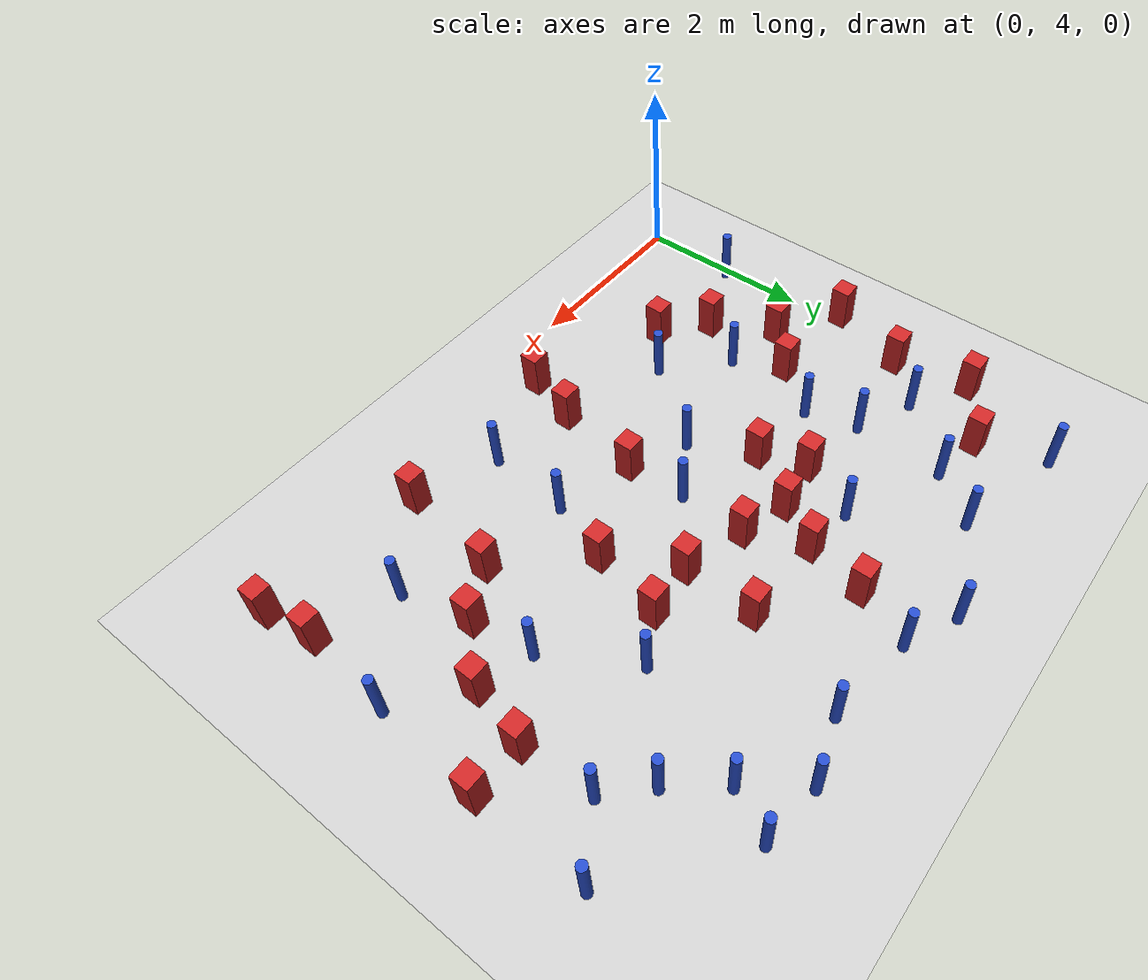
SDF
<sdf version="1.6">
 <world name="default">
  <model name="ground_plane">
   <static>1</static>
   <link name="link">
    <collision name="collision">
     <geometry><plane><normal>0 0 1</normal><size>100 100</size></plane></geometry>
     <surface><friction><ode><mu>100</mu><mu2>50</mu2></ode></friction></surface>
    </collision>
    <visual name="visual">
     <cast_shadows>0</cast_shadows>
     <geometry><plane><normal>0 0 1</normal><size>100 100</size></plane></geometry>
     <material>
      <ambient>1.0 1.0 1.0 1.0</ambient>
      <diffuse>0.8 0.8 0.8 1.0</diffuse>
      <specular>0.01 0.01 0.01 1.000000</specular>
     </material>
    </visual>
   </link>
  </model>
  <model name="square_post_obstacle3">
   <static>true</static>
   <pose>0.220283548735 7.4439996634 8.22691968438e-08 7.2212513382e-06 -7.54495500217e-07 2.29674213826e-05</pose>
   <link name="link">
    <pose>0 0 0.25 0 -0 0</pose>
    <inertial>
     <mass>100</mass>
     <inertia>
      <ixx>0.166667</ixx>
      <ixy>0</ixy>
      <ixz>0</ixz>
      <iyy>0.166667</iyy>
      <iyz>0</iyz>
      <izz>0.166667</izz>
     </inertia>
    </inertial>
    <collision name="collision"><geometry><box><size>.2 .2 .5</size></box></geometry></collision>
    <visual name="visual">
     <geometry><box><size>.2 .2 .5</size></box></geometry>
     <material>
      <script><name>Gazebo/Red</name><uri>file://media/materials/scripts/gazebo.material</uri></script>
     </material>
    </visual>
   </link>
  </model>
  <model name="pole_obstacle6">
   <static>true</static>
   <pose>2.69425308004 9.47498781607 2.88873142074e-08 -9.90536692318e-09 4.6021994893e-07 -1.20965994988e-07</pose>
   <link name="link">
    <pose>0 0 0.3 0 -0 0</pose>
    <inertial>
     <mass>1</mass>
     <inertia><ixx>0.145833</ixx><ixy>0</ixy><ixz>0</ixz><iyy>0.145833</iyy><iyz>0</iyz><izz>0.125</izz></inertia>
    </inertial>
    <collision name="collision">
     <geometry><cylinder><radius>0.05</radius><length>.6</length></cylinder></geometry>
    </collision>
    <visual name="visual">
     <geometry><cylinder><radius>0.05</radius><length>.6</length></cylinder></geometry>
     <material>
      <script><name>Gazebo/Blue</name><uri>file://media/materials/scripts/gazebo.material</uri></script>
     </material>
    </visual>
   </link>
  </model>
  <model name="square_post_obstacle9">
   <static>true</static>
   <pose>3.78639637061 7.98627830931 8.22691968438e-08 7.22125133819e-06 -7.54495500217e-07 2.29674213826e-05</pose>
   <link name="link">
    <pose>0 0 0.25 0 -0 0</pose>
    <inertial>
     <mass>100</mass>
     <inertia>
      <ixx>0.166667</ixx>
      <ixy>0</ixy>
      <ixz>0</ixz>
      <iyy>0.166667</iyy>
      <iyz>0</iyz>
      <izz>0.166667</izz>
     </inertia>
    </inertial>
    <collision name="collision"><geometry><box><size>.2 .2 .5</size></box></geometry></collision>
    <visual name="visual">
     <geometry><box><size>.2 .2 .5</size></box></geometry>
     <material>
      <script><name>Gazebo/Red</name><uri>file://media/materials/scripts/gazebo.material</uri></script>
     </material>
    </visual>
   </link>
  </model>
  <model name="pole_obstacle8">
   <static>true</static>
   <pose>2.31026452429 8.07180939021 2.88873142074e-08 -9.90536692318e-09 4.6021994893e-07 -1.20965994988e-07</pose>
   <link name="link">
    <pose>0 0 0.3 0 -0 0</pose>
    <inertial>
     <mass>1</mass>
     <inertia><ixx>0.145833</ixx><ixy>0</ixy><ixz>0</ixz><iyy>0.145833</iyy><iyz>0</iyz><izz>0.125</izz></inertia>
    </inertial>
    <collision name="collision">
     <geometry><cylinder><radius>0.05</radius><length>.6</length></cylinder></geometry>
    </collision>
    <visual name="visual">
     <geometry><cylinder><radius>0.05</radius><length>.6</length></cylinder></geometry>
     <material>
      <script><name>Gazebo/Blue</name><uri>file://media/materials/scripts/gazebo.material</uri></script>
     </material>
    </visual>
   </link>
  </model>
  <model name="pole_obstacle9">
   <static>true</static>
   <pose>2.51598019912 6.29896532646 2.88873142074e-08 -9.90536689859e-09 4.60219948989e-07 -1.20965994961e-07</pose>
   <link name="link">
    <pose>0 0 0.3 0 -0 0</pose>
    <inertial>
     <mass>1</mass>
     <inertia><ixx>0.145833</ixx><ixy>0</ixy><ixz>0</ixz><iyy>0.145833</iyy><iyz>0</iyz><izz>0.125</izz></inertia>
    </inertial>
    <collision name="collision">
     <geometry><cylinder><radius>0.05</radius><length>.6</length></cylinder></geometry>
    </collision>
    <visual name="visual">
     <geometry><cylinder><radius>0.05</radius><length>.6</length></cylinder></geometry>
     <material>
      <script><name>Gazebo/Blue</name><uri>file://media/materials/scripts/gazebo.material</uri></script>
     </material>
    </visual>
   </link>
  </model>
  <model name="square_post_obstacle17">
   <static>true</static>
   <pose>4.68955021579 4.60673280405 8.22691968438e-08 7.2212513382e-06 -7.54495500217e-07 2.29674213826e-05</pose>
   <link name="link">
    <pose>0 0 0.25 0 -0 0</pose>
    <inertial>
     <mass>100</mass>
     <inertia>
      <ixx>0.166667</ixx>
      <ixy>0</ixy>
      <ixz>0</ixz>
      <iyy>0.166667</iyy>
      <iyz>0</iyz>
      <izz>0.166667</izz>
     </inertia>
    </inertial>
    <collision name="collision"><geometry><box><size>.2 .2 .5</size></box></geometry></collision>
    <visual name="visual">
     <geometry><box><size>.2 .2 .5</size></box></geometry>
     <material>
      <script><name>Gazebo/Red</name><uri>file://media/materials/scripts/gazebo.material</uri></script>
     </material>
    </visual>
   </link>
  </model>
  <model name="square_post_obstacle23">
   <static>true</static>
   <pose>4.85911699696 5.70394162171 8.22691968438e-08 7.2212513382e-06 -7.54495500217e-07 2.29674213826e-05</pose>
   <link name="link">
    <pose>0 0 0.25 0 -0 0</pose>
    <inertial>
     <mass>100</mass>
     <inertia>
      <ixx>0.166667</ixx>
      <ixy>0</ixy>
      <ixz>0</ixz>
      <iyy>0.166667</iyy>
      <iyz>0</iyz>
      <izz>0.166667</izz>
     </inertia>
    </inertial>
    <collision name="collision"><geometry><box><size>.2 .2 .5</size></box></geometry></collision>
    <visual name="visual">
     <geometry><box><size>.2 .2 .5</size></box></geometry>
     <material>
      <script><name>Gazebo/Red</name><uri>file://media/materials/scripts/gazebo.material</uri></script>
     </material>
    </visual>
   </link>
  </model>
  <model name="square_post_obstacle30">
   <static>true</static>
   <pose>2.8649841445 8.0075565689 8.22691968438e-08 7.22125133819e-06 -7.54495500217e-07 2.29674213826e-05</pose>
   <link name="link">
    <pose>0 0 0.25 0 -0 0</pose>
    <inertial>
     <mass>100</mass>
     <inertia>
      <ixx>0.166667</ixx>
      <ixy>0</ixy>
      <ixz>0</ixz>
      <iyy>0.166667</iyy>
      <iyz>0</iyz>
      <izz>0.166667</izz>
     </inertia>
    </inertial>
    <collision name="collision"><geometry><box><size>.2 .2 .5</size></box></geometry></collision>
    <visual name="visual">
     <geometry><box><size>.2 .2 .5</size></box></geometry>
     <material>
      <script><name>Gazebo/Red</name><uri>file://media/materials/scripts/gazebo.material</uri></script>
     </material>
    </visual>
   </link>
  </model>
  <model name="square_post_obstacle34">
   <static>true</static>
   <pose>0.085140028514 8.27013821158 8.22691968438e-08 7.22125133819e-06 -7.54495500217e-07 2.29674213826e-05</pose>
   <link name="link">
    <pose>0 0 0.25 0 -0 0</pose>
    <inertial>
     <mass>100</mass>
     <inertia>
      <ixx>0.166667</ixx>
      <ixy>0</ixy>
      <ixz>0</ixz>
      <iyy>0.166667</iyy>
      <iyz>0</iyz>
      <izz>0.166667</izz>
     </inertia>
    </inertial>
    <collision name="collision"><geometry><box><size>.2 .2 .5</size></box></geometry></collision>
    <visual name="visual">
     <geometry><box><size>.2 .2 .5</size></box></geometry>
     <material>
      <script><name>Gazebo/Red</name><uri>file://media/materials/scripts/gazebo.material</uri></script>
     </material>
    </visual>
   </link>
  </model>
  <model name="pole_obstacle37">
   <static>true</static>
   <pose>5.17884029192 8.73370272493 2.88873142074e-08 -9.9053668967e-09 4.60219948993e-07 -1.20965994957e-07</pose>
   <link name="link">
    <pose>0 0 0.3 0 -0 0</pose>
    <inertial>
     <mass>1</mass>
     <inertia><ixx>0.145833</ixx><ixy>0</ixy><ixz>0</ixz><iyy>0.145833</iyy><iyz>0</iyz><izz>0.125</izz></inertia>
    </inertial>
    <collision name="collision">
     <geometry><cylinder><radius>0.05</radius><length>.6</length></cylinder></geometry>
    </collision>
    <visual name="visual">
     <geometry><cylinder><radius>0.05</radius><length>.6</length></cylinder></geometry>
     <material>
      <script><name>Gazebo/Blue</name><uri>file://media/materials/scripts/gazebo.material</uri></script>
     </material>
    </visual>
   </link>
  </model>
  <model name="pole_obstacle38">
   <static>true</static>
   <pose>5.52403362217 5.26702677876 2.88873142074e-08 -9.90536690842e-09 4.60219948965e-07 -1.20965994976e-07</pose>
   <link name="link">
    <pose>0 0 0.3 0 -0 0</pose>
    <inertial>
     <mass>1</mass>
     <inertia><ixx>0.145833</ixx><ixy>0</ixy><ixz>0</ixz><iyy>0.145833</iyy><iyz>0</iyz><izz>0.125</izz></inertia>
    </inertial>
    <collision name="collision">
     <geometry><cylinder><radius>0.05</radius><length>.6</length></cylinder></geometry>
    </collision>
    <visual name="visual">
     <geometry><cylinder><radius>0.05</radius><length>.6</length></cylinder></geometry>
     <material>
      <script><name>Gazebo/Blue</name><uri>file://media/materials/scripts/gazebo.material</uri></script>
     </material>
    </visual>
   </link>
  </model>
  <model name="pole_obstacle45">
   <static>true</static>
   <pose>6.49874152332 8.29672848113 2.88873142074e-08 -9.9053668967e-09 4.60219948993e-07 -1.20965994957e-07</pose>
   <link name="link">
    <pose>0 0 0.3 0 -0 0</pose>
    <inertial>
     <mass>1</mass>
     <inertia><ixx>0.145833</ixx><ixy>0</ixy><ixz>0</ixz><iyy>0.145833</iyy><iyz>0</iyz><izz>0.125</izz></inertia>
    </inertial>
    <collision name="collision">
     <geometry><cylinder><radius>0.05</radius><length>.6</length></cylinder></geometry>
    </collision>
    <visual name="visual">
     <geometry><cylinder><radius>0.05</radius><length>.6</length></cylinder></geometry>
     <material>
      <script><name>Gazebo/Blue</name><uri>file://media/materials/scripts/gazebo.material</uri></script>
     </material>
    </visual>
   </link>
  </model>
  <model name="square_post_obstacle43">
   <static>true</static>
   <pose>4.30811936155 7.25453280102 8.22691968438e-08 7.2212513382e-06 -7.54495500217e-07 2.29674213826e-05</pose>
   <link name="link">
    <pose>0 0 0.25 0 -0 0</pose>
    <inertial>
     <mass>100</mass>
     <inertia>
      <ixx>0.166667</ixx>
      <ixy>0</ixy>
      <ixz>0</ixz>
      <iyy>0.166667</iyy>
      <iyz>0</iyz>
      <izz>0.166667</izz>
     </inertia>
    </inertial>
    <collision name="collision"><geometry><box><size>.2 .2 .5</size></box></geometry></collision>
    <visual name="visual">
     <geometry><box><size>.2 .2 .5</size></box></geometry>
     <material>
      <script><name>Gazebo/Red</name><uri>file://media/materials/scripts/gazebo.material</uri></script>
     </material>
    </visual>
   </link>
  </model>
  <model name="square_post_obstacle46">
   <static>true</static>
   <pose>5.35161566547 6.00532809683 8.22691968438e-08 7.2212513382e-06 -7.54495500217e-07 2.29674213826e-05</pose>
   <link name="link">
    <pose>0 0 0.25 0 -0 0</pose>
    <inertial>
     <mass>100</mass>
     <inertia>
      <ixx>0.166667</ixx>
      <ixy>0</ixy>
      <ixz>0</ixz>
      <iyy>0.166667</iyy>
      <iyz>0</iyz>
      <izz>0.166667</izz>
     </inertia>
    </inertial>
    <collision name="collision"><geometry><box><size>.2 .2 .5</size></box></geometry></collision>
    <visual name="visual">
     <geometry><box><size>.2 .2 .5</size></box></geometry>
     <material>
      <script><name>Gazebo/Red</name><uri>file://media/materials/scripts/gazebo.material</uri></script>
     </material>
    </visual>
   </link>
  </model>
  <model name="square_post_obstacle56">
   <static>true</static>
   <pose>0.604942297487 6.14686317366 8.22691968438e-08 7.2212513382e-06 -7.54495500217e-07 2.29674213826e-05</pose>
   <link name="link">
    <pose>0 0 0.25 0 -0 0</pose>
    <inertial>
     <mass>100</mass>
     <inertia>
      <ixx>0.166667</ixx>
      <ixy>0</ixy>
      <ixz>0</ixz>
      <iyy>0.166667</iyy>
      <iyz>0</iyz>
      <izz>0.166667</izz>
     </inertia>
    </inertial>
    <collision name="collision"><geometry><box><size>.2 .2 .5</size></box></geometry></collision>
    <visual name="visual">
     <geometry><box><size>.2 .2 .5</size></box></geometry>
     <material>
      <script><name>Gazebo/Red</name><uri>file://media/materials/scripts/gazebo.material</uri></script>
     </material>
    </visual>
   </link>
  </model>
  <model name="pole_obstacle53">
   <static>true</static>
   <pose>1.41320910387 7.03938046539 2.88873142074e-08 -9.90536689852e-09 4.60219948989e-07 -1.2096599496e-07</pose>
   <link name="link">
    <pose>0 0 0.3 0 -0 0</pose>
    <inertial>
     <mass>1</mass>
     <inertia><ixx>0.145833</ixx><ixy>0</ixy><ixz>0</ixz><iyy>0.145833</iyy><iyz>0</iyz><izz>0.125</izz></inertia>
    </inertial>
    <collision name="collision">
     <geometry><cylinder><radius>0.05</radius><length>.6</length></cylinder></geometry>
    </collision>
    <visual name="visual">
     <geometry><cylinder><radius>0.05</radius><length>.6</length></cylinder></geometry>
     <material>
      <script><name>Gazebo/Blue</name><uri>file://media/materials/scripts/gazebo.material</uri></script>
     </material>
    </visual>
   </link>
  </model>
  <model name="square_post_obstacle57">
   <static>true</static>
   <pose>2.05604624781 7.47773621085 8.22691968438e-08 7.22125133819e-06 -7.54495500217e-07 2.29674213826e-05</pose>
   <link name="link">
    <pose>0 0 0.25 0 -0 0</pose>
    <inertial>
     <mass>100</mass>
     <inertia>
      <ixx>0.166667</ixx>
      <ixy>0</ixy>
      <ixz>0</ixz>
      <iyy>0.166667</iyy>
      <iyz>0</iyz>
      <izz>0.166667</izz>
     </inertia>
    </inertial>
    <collision name="collision"><geometry><box><size>.2 .2 .5</size></box></geometry></collision>
    <visual name="visual">
     <geometry><box><size>.2 .2 .5</size></box></geometry>
     <material>
      <script><name>Gazebo/Red</name><uri>file://media/materials/scripts/gazebo.material</uri></script>
     </material>
    </visual>
   </link>
  </model>
  <model name="pole_obstacle55">
   <static>true</static>
   <pose>3.07885380343 6.66788064376 2.88873142074e-08 -9.90536689859e-09 4.60219948989e-07 -1.20965994961e-07</pose>
   <link name="link">
    <pose>0 0 0.3 0 -0 0</pose>
    <inertial>
     <mass>1</mass>
     <inertia><ixx>0.145833</ixx><ixy>0</ixy><ixz>0</ixz><iyy>0.145833</iyy><iyz>0</iyz><izz>0.125</izz></inertia>
    </inertial>
    <collision name="collision">
     <geometry><cylinder><radius>0.05</radius><length>.6</length></cylinder></geometry>
    </collision>
    <visual name="visual">
     <geometry><cylinder><radius>0.05</radius><length>.6</length></cylinder></geometry>
     <material>
      <script><name>Gazebo/Blue</name><uri>file://media/materials/scripts/gazebo.material</uri></script>
     </material>
    </visual>
   </link>
  </model>
  <model name="square_post_obstacle69">
   <static>true</static>
   <pose>5.95506873294 7.13455975643 8.22691968438e-08 7.2212513382e-06 -7.54495500217e-07 2.29674213826e-05</pose>
   <link name="link">
    <pose>0 0 0.25 0 -0 0</pose>
    <inertial>
     <mass>100</mass>
     <inertia>
      <ixx>0.166667</ixx>
      <ixy>0</ixy>
      <ixz>0</ixz>
      <iyy>0.166667</iyy>
      <iyz>0</iyz>
      <izz>0.166667</izz>
     </inertia>
    </inertial>
    <collision name="collision"><geometry><box><size>.2 .2 .5</size></box></geometry></collision>
    <visual name="visual">
     <geometry><box><size>.2 .2 .5</size></box></geometry>
     <material>
      <script><name>Gazebo/Red</name><uri>file://media/materials/scripts/gazebo.material</uri></script>
     </material>
    </visual>
   </link>
  </model>
  <model name="pole_obstacle67">
   <static>true</static>
   <pose>0.0829915816881 5.0885147181 2.88873142074e-08 -9.90536689742e-09 4.60219948992e-07 -1.2096599496e-07</pose>
   <link name="link">
    <pose>0 0 0.3 0 -0 0</pose>
    <inertial>
     <mass>1</mass>
     <inertia><ixx>0.145833</ixx><ixy>0</ixy><ixz>0</ixz><iyy>0.145833</iyy><iyz>0</iyz><izz>0.125</izz></inertia>
    </inertial>
    <collision name="collision">
     <geometry><cylinder><radius>0.05</radius><length>.6</length></cylinder></geometry>
    </collision>
    <visual name="visual">
     <geometry><cylinder><radius>0.05</radius><length>.6</length></cylinder></geometry>
     <material>
      <script><name>Gazebo/Blue</name><uri>file://media/materials/scripts/gazebo.material</uri></script>
     </material>
    </visual>
   </link>
  </model>
  <model name="pole_obstacle69">
   <static>true</static>
   <pose>3.2331415702 9.21373848735 2.88873142074e-08 -9.90536692318e-09 4.6021994893e-07 -1.20965994988e-07</pose>
   <link name="link">
    <pose>0 0 0.3 0 -0 0</pose>
    <inertial>
     <mass>1</mass>
     <inertia><ixx>0.145833</ixx><ixy>0</ixy><ixz>0</ixz><iyy>0.145833</iyy><iyz>0</iyz><izz>0.125</izz></inertia>
    </inertial>
    <collision name="collision">
     <geometry><cylinder><radius>0.05</radius><length>.6</length></cylinder></geometry>
    </collision>
    <visual name="visual">
     <geometry><cylinder><radius>0.05</radius><length>.6</length></cylinder></geometry>
     <material>
      <script><name>Gazebo/Blue</name><uri>file://media/materials/scripts/gazebo.material</uri></script>
     </material>
    </visual>
   </link>
  </model>
  <model name="pole_obstacle73">
   <static>true</static>
   <pose>5.91485376452 7.88671532323 2.88873142074e-08 -9.90536690842e-09 4.60219948965e-07 -1.20965994976e-07</pose>
   <link name="link">
    <pose>0 0 0.3 0 -0 0</pose>
    <inertial>
     <mass>1</mass>
     <inertia><ixx>0.145833</ixx><ixy>0</ixy><ixz>0</ixz><iyy>0.145833</iyy><iyz>0</iyz><izz>0.125</izz></inertia>
    </inertial>
    <collision name="collision">
     <geometry><cylinder><radius>0.05</radius><length>.6</length></cylinder></geometry>
    </collision>
    <visual name="visual">
     <geometry><cylinder><radius>0.05</radius><length>.6</length></cylinder></geometry>
     <material>
      <script><name>Gazebo/Blue</name><uri>file://media/materials/scripts/gazebo.material</uri></script>
     </material>
    </visual>
   </link>
  </model>
  <model name="pole_obstacle95">
   <static>true</static>
   <pose>0.659709493371 7.88145670007 2.88873142074e-08 -9.90536689661e-09 4.60219948993e-07 -1.20965994957e-07</pose>
   <link name="link">
    <pose>0 0 0.3 0 -0 0</pose>
    <inertial>
     <mass>1</mass>
     <inertia><ixx>0.145833</ixx><ixy>0</ixy><ixz>0</ixz><iyy>0.145833</iyy><iyz>0</iyz><izz>0.125</izz></inertia>
    </inertial>
    <collision name="collision">
     <geometry><cylinder><radius>0.05</radius><length>.6</length></cylinder></geometry>
    </collision>
    <visual name="visual">
     <geometry><cylinder><radius>0.05</radius><length>.6</length></cylinder></geometry>
     <material>
      <script><name>Gazebo/Blue</name><uri>file://media/materials/scripts/gazebo.material</uri></script>
     </material>
    </visual>
   </link>
  </model>
  <model name="square_post_obstacle86">
   <static>true</static>
   <pose>3.11945518368 6.03093490074 8.22691968438e-08 7.2212513382e-06 -7.54495500217e-07 2.29674213826e-05</pose>
   <link name="link">
    <pose>0 0 0.25 0 -0 0</pose>
    <inertial>
     <mass>100</mass>
     <inertia>
      <ixx>0.166667</ixx>
      <ixy>0</ixy>
      <ixz>0</ixz>
      <iyy>0.166667</iyy>
      <iyz>0</iyz>
      <izz>0.166667</izz>
     </inertia>
    </inertial>
    <collision name="collision"><geometry><box><size>.2 .2 .5</size></box></geometry></collision>
    <visual name="visual">
     <geometry><box><size>.2 .2 .5</size></box></geometry>
     <material>
      <script><name>Gazebo/Red</name><uri>file://media/materials/scripts/gazebo.material</uri></script>
     </material>
    </visual>
   </link>
  </model>
  <model name="pole_obstacle97">
   <static>true</static>
   <pose>1.31189081528 8.56895167638 2.88873142074e-08 -9.90536690474e-09 4.60219948974e-07 -1.2096599497e-07</pose>
   <link name="link">
    <pose>0 0 0.3 0 -0 0</pose>
    <inertial>
     <mass>1</mass>
     <inertia><ixx>0.145833</ixx><ixy>0</ixy><ixz>0</ixz><iyy>0.145833</iyy><iyz>0</iyz><izz>0.125</izz></inertia>
    </inertial>
    <collision name="collision">
     <geometry><cylinder><radius>0.05</radius><length>.6</length></cylinder></geometry>
    </collision>
    <visual name="visual">
     <geometry><cylinder><radius>0.05</radius><length>.6</length></cylinder></geometry>
     <material>
      <script><name>Gazebo/Blue</name><uri>file://media/materials/scripts/gazebo.material</uri></script>
     </material>
    </visual>
   </link>
  </model>
  <model name="square_post_obstacle89">
   <static>true</static>
   <pose>6.39162029417 4.45620203469 8.22691968438e-08 7.2212513382e-06 -7.54495500217e-07 2.29674213826e-05</pose>
   <link name="link">
    <pose>0 0 0.25 0 -0 0</pose>
    <inertial>
     <mass>100</mass>
     <inertia>
      <ixx>0.166667</ixx>
      <ixy>0</ixy>
      <ixz>0</ixz>
      <iyy>0.166667</iyy>
      <iyz>0</iyz>
      <izz>0.166667</izz>
     </inertia>
    </inertial>
    <collision name="collision"><geometry><box><size>.2 .2 .5</size></box></geometry></collision>
    <visual name="visual">
     <geometry><box><size>.2 .2 .5</size></box></geometry>
     <material>
      <script><name>Gazebo/Red</name><uri>file://media/materials/scripts/gazebo.material</uri></script>
     </material>
    </visual>
   </link>
  </model>
  <model name="square_post_obstacle95">
   <static>true</static>
   <pose>-0.0642270721826 6.59413401046 8.22691968438e-08 7.2212513382e-06 -7.54495500217e-07 2.29674213826e-05</pose>
   <link name="link">
    <pose>0 0 0.25 0 -0 0</pose>
    <inertial>
     <mass>100</mass>
     <inertia>
      <ixx>0.166667</ixx>
      <ixy>0</ixy>
      <ixz>0</ixz>
      <iyy>0.166667</iyy>
      <iyz>0</iyz>
      <izz>0.166667</izz>
     </inertia>
    </inertial>
    <collision name="collision"><geometry><box><size>.2 .2 .5</size></box></geometry></collision>
    <visual name="visual">
     <geometry><box><size>.2 .2 .5</size></box></geometry>
     <material>
      <script><name>Gazebo/Red</name><uri>file://media/materials/scripts/gazebo.material</uri></script>
     </material>
    </visual>
   </link>
  </model>
  <model name="square_post_obstacle96">
   <static>true</static>
   <pose>2.60215764779 7.55907821599 8.22691968438e-08 7.2212513382e-06 -7.54495500217e-07 2.29674213826e-05</pose>
   <link name="link">
    <pose>0 0 0.25 0 -0 0</pose>
    <inertial>
     <mass>100</mass>
     <inertia>
      <ixx>0.166667</ixx>
      <ixy>0</ixy>
      <ixz>0</ixz>
      <iyy>0.166667</iyy>
      <iyz>0</iyz>
      <izz>0.166667</izz>
     </inertia>
    </inertial>
    <collision name="collision"><geometry><box><size>.2 .2 .5</size></box></geometry></collision>
    <visual name="visual">
     <geometry><box><size>.2 .2 .5</size></box></geometry>
     <material>
      <script><name>Gazebo/Red</name><uri>file://media/materials/scripts/gazebo.material</uri></script>
     </material>
    </visual>
   </link>
  </model>
  <model name="pole_obstacle109">
   <static>true</static>
   <pose>5.25581321329 6.64644915877 2.88873142074e-08 -9.90536690842e-09 4.60219948965e-07 -1.20965994976e-07</pose>
   <link name="link">
    <pose>0 0 0.3 0 -0 0</pose>
    <inertial>
     <mass>1</mass>
     <inertia><ixx>0.145833</ixx><ixy>0</ixy><ixz>0</ixz><iyy>0.145833</iyy><iyz>0</iyz><izz>0.125</izz></inertia>
    </inertial>
    <collision name="collision">
     <geometry><cylinder><radius>0.05</radius><length>.6</length></cylinder></geometry>
    </collision>
    <visual name="visual">
     <geometry><cylinder><radius>0.05</radius><length>.6</length></cylinder></geometry>
     <material>
      <script><name>Gazebo/Blue</name><uri>file://media/materials/scripts/gazebo.material</uri></script>
     </material>
    </visual>
   </link>
  </model>
  <model name="square_post_obstacle109">
   <static>true</static>
   <pose>3.76240516653 7.21054712515 8.22691968438e-08 7.2212513382e-06 -7.54495500217e-07 2.29674213826e-05</pose>
   <link name="link">
    <pose>0 0 0.25 0 -0 0</pose>
    <inertial>
     <mass>100</mass>
     <inertia>
      <ixx>0.166667</ixx>
      <ixy>0</ixy>
      <ixz>0</ixz>
      <iyy>0.166667</iyy>
      <iyz>0</iyz>
      <izz>0.166667</izz>
     </inertia>
    </inertial>
    <collision name="collision"><geometry><box><size>.2 .2 .5</size></box></geometry></collision>
    <visual name="visual">
     <geometry><box><size>.2 .2 .5</size></box></geometry>
     <material>
      <script><name>Gazebo/Red</name><uri>file://media/materials/scripts/gazebo.material</uri></script>
     </material>
    </visual>
   </link>
  </model>
  <model name="pole_obstacle128">
   <static>true</static>
   <pose>5.4030353684 9.19148409726 2.88873142074e-08 -9.9053668967e-09 4.60219948993e-07 -1.20965994957e-07</pose>
   <link name="link">
    <pose>0 0 0.3 0 -0 0</pose>
    <inertial>
     <mass>1</mass>
     <inertia><ixx>0.145833</ixx><ixy>0</ixy><ixz>0</ixz><iyy>0.145833</iyy><iyz>0</iyz><izz>0.125</izz></inertia>
    </inertial>
    <collision name="collision">
     <geometry><cylinder><radius>0.05</radius><length>.6</length></cylinder></geometry>
    </collision>
    <visual name="visual">
     <geometry><cylinder><radius>0.05</radius><length>.6</length></cylinder></geometry>
     <material>
      <script><name>Gazebo/Blue</name><uri>file://media/materials/scripts/gazebo.material</uri></script>
     </material>
    </visual>
   </link>
  </model>
  <model name="square_post_obstacle114">
   <static>true</static>
   <pose>2.79283630948 4.50158150014 8.22691968438e-08 7.2212513382e-06 -7.54495500217e-07 2.29674213826e-05</pose>
   <link name="link">
    <pose>0 0 0.25 0 -0 0</pose>
    <inertial>
     <mass>100</mass>
     <inertia>
      <ixx>0.166667</ixx>
      <ixy>0</ixy>
      <ixz>0</ixz>
      <iyy>0.166667</iyy>
      <iyz>0</iyz>
      <izz>0.166667</izz>
     </inertia>
    </inertial>
    <collision name="collision"><geometry><box><size>.2 .2 .5</size></box></geometry></collision>
    <visual name="visual">
     <geometry><box><size>.2 .2 .5</size></box></geometry>
     <material>
      <script><name>Gazebo/Red</name><uri>file://media/materials/scripts/gazebo.material</uri></script>
     </material>
    </visual>
   </link>
  </model>
  <model name="pole_obstacle136">
   <static>true</static>
   <pose>1.84269373913 5.42435164574 2.88873142074e-08 -9.90536689852e-09 4.60219948989e-07 -1.2096599496e-07</pose>
   <link name="link">
    <pose>0 0 0.3 0 -0 0</pose>
    <inertial>
     <mass>1</mass>
     <inertia><ixx>0.145833</ixx><ixy>0</ixy><ixz>0</ixz><iyy>0.145833</iyy><iyz>0</iyz><izz>0.125</izz></inertia>
    </inertial>
    <collision name="collision">
     <geometry><cylinder><radius>0.05</radius><length>.6</length></cylinder></geometry>
    </collision>
    <visual name="visual">
     <geometry><cylinder><radius>0.05</radius><length>.6</length></cylinder></geometry>
     <material>
      <script><name>Gazebo/Blue</name><uri>file://media/materials/scripts/gazebo.material</uri></script>
     </material>
    </visual>
   </link>
  </model>
  <model name="pole_obstacle139">
   <static>true</static>
   <pose>0.506766339734 9.39320551584 2.88873142074e-08 -9.90536690924e-09 4.60219948963e-07 -1.20965994977e-07</pose>
   <link name="link">
    <pose>0 0 0.3 0 -0 0</pose>
    <inertial>
     <mass>1</mass>
     <inertia><ixx>0.145833</ixx><ixy>0</ixy><ixz>0</ixz><iyy>0.145833</iyy><iyz>0</iyz><izz>0.125</izz></inertia>
    </inertial>
    <collision name="collision">
     <geometry><cylinder><radius>0.05</radius><length>.6</length></cylinder></geometry>
    </collision>
    <visual name="visual">
     <geometry><cylinder><radius>0.05</radius><length>.6</length></cylinder></geometry>
     <material>
      <script><name>Gazebo/Blue</name><uri>file://media/materials/scripts/gazebo.material</uri></script>
     </material>
    </visual>
   </link>
  </model>
  <model name="square_post_obstacle126">
   <static>true</static>
   <pose>4.13910945079 6.48563445574 8.22691968438e-08 7.2212513382e-06 -7.54495500217e-07 2.29674213826e-05</pose>
   <link name="link">
    <pose>0 0 0.25 0 -0 0</pose>
    <inertial>
     <mass>100</mass>
     <inertia>
      <ixx>0.166667</ixx>
      <ixy>0</ixy>
      <ixz>0</ixz>
      <iyy>0.166667</iyy>
      <iyz>0</iyz>
      <izz>0.166667</izz>
     </inertia>
    </inertial>
    <collision name="collision"><geometry><box><size>.2 .2 .5</size></box></geometry></collision>
    <visual name="visual">
     <geometry><box><size>.2 .2 .5</size></box></geometry>
     <material>
      <script><name>Gazebo/Red</name><uri>file://media/materials/scripts/gazebo.material</uri></script>
     </material>
    </visual>
   </link>
  </model>
  <model name="square_post_obstacle127">
   <static>true</static>
   <pose>1.02949419034 6.53899749754 8.22691968438e-08 7.2212513382e-06 -7.54495500217e-07 2.29674213826e-05</pose>
   <link name="link">
    <pose>0 0 0.25 0 -0 0</pose>
    <inertial>
     <mass>100</mass>
     <inertia>
      <ixx>0.166667</ixx>
      <ixy>0</ixy>
      <ixz>0</ixz>
      <iyy>0.166667</iyy>
      <iyz>0</iyz>
      <izz>0.166667</izz>
     </inertia>
    </inertial>
    <collision name="collision"><geometry><box><size>.2 .2 .5</size></box></geometry></collision>
    <visual name="visual">
     <geometry><box><size>.2 .2 .5</size></box></geometry>
     <material>
      <script><name>Gazebo/Red</name><uri>file://media/materials/scripts/gazebo.material</uri></script>
     </material>
    </visual>
   </link>
  </model>
  <model name="square_post_obstacle128">
   <static>true</static>
   <pose>6.48377344402 7.12388761191 8.22691968438e-08 7.2212513382e-06 -7.54495500217e-07 2.29674213826e-05</pose>
   <link name="link">
    <pose>0 0 0.25 0 -0 0</pose>
    <inertial>
     <mass>100</mass>
     <inertia>
      <ixx>0.166667</ixx>
      <ixy>0</ixy>
      <ixz>0</ixz>
      <iyy>0.166667</iyy>
      <iyz>0</iyz>
      <izz>0.166667</izz>
     </inertia>
    </inertial>
    <collision name="collision"><geometry><box><size>.2 .2 .5</size></box></geometry></collision>
    <visual name="visual">
     <geometry><box><size>.2 .2 .5</size></box></geometry>
     <material>
      <script><name>Gazebo/Red</name><uri>file://media/materials/scripts/gazebo.material</uri></script>
     </material>
    </visual>
   </link>
  </model>
  <model name="pole_obstacle143">
   <static>true</static>
   <pose>3.83126998578 4.88932745631 2.88873142074e-08 -9.90536689859e-09 4.60219948989e-07 -1.20965994961e-07</pose>
   <link name="link">
    <pose>0 0 0.3 0 -0 0</pose>
    <inertial>
     <mass>1</mass>
     <inertia><ixx>0.145833</ixx><ixy>0</ixy><ixz>0</ixz><iyy>0.145833</iyy><iyz>0</iyz><izz>0.125</izz></inertia>
    </inertial>
    <collision name="collision">
     <geometry><cylinder><radius>0.05</radius><length>.6</length></cylinder></geometry>
    </collision>
    <visual name="visual">
     <geometry><cylinder><radius>0.05</radius><length>.6</length></cylinder></geometry>
     <material>
      <script><name>Gazebo/Blue</name><uri>file://media/materials/scripts/gazebo.material</uri></script>
     </material>
    </visual>
   </link>
  </model>
  <model name="pole_obstacle144">
   <static>true</static>
   <pose>6.42000960072 5.9750292117 2.88873142074e-08 -9.90536690842e-09 4.60219948965e-07 -1.20965994976e-07</pose>
   <link name="link">
    <pose>0 0 0.3 0 -0 0</pose>
    <inertial>
     <mass>1</mass>
     <inertia><ixx>0.145833</ixx><ixy>0</ixy><ixz>0</ixz><iyy>0.145833</iyy><iyz>0</iyz><izz>0.125</izz></inertia>
    </inertial>
    <collision name="collision">
     <geometry><cylinder><radius>0.05</radius><length>.6</length></cylinder></geometry>
    </collision>
    <visual name="visual">
     <geometry><cylinder><radius>0.05</radius><length>.6</length></cylinder></geometry>
     <material>
      <script><name>Gazebo/Blue</name><uri>file://media/materials/scripts/gazebo.material</uri></script>
     </material>
    </visual>
   </link>
  </model>
  <model name="square_post_obstacle151">
   <static>true</static>
   <pose>0.755205157368 8.6650177883 8.22691968438e-08 7.22125133819e-06 -7.54495500217e-07 2.29674213826e-05</pose>
   <link name="link">
    <pose>0 0 0.25 0 -0 0</pose>
    <inertial>
     <mass>100</mass>
     <inertia>
      <ixx>0.166667</ixx>
      <ixy>0</ixy>
      <ixz>0</ixz>
      <iyy>0.166667</iyy>
      <iyz>0</iyz>
      <izz>0.166667</izz>
     </inertia>
    </inertial>
    <collision name="collision"><geometry><box><size>.2 .2 .5</size></box></geometry></collision>
    <visual name="visual">
     <geometry><box><size>.2 .2 .5</size></box></geometry>
     <material>
      <script><name>Gazebo/Red</name><uri>file://media/materials/scripts/gazebo.material</uri></script>
     </material>
    </visual>
   </link>
  </model>
  <model name="square_post_obstacle152">
   <static>true</static>
   <pose>2.97482710588 5.08902760182 8.22691968438e-08 7.2212513382e-06 -7.54495500217e-07 2.29674213826e-05</pose>
   <link name="link">
    <pose>0 0 0.25 0 -0 0</pose>
    <inertial>
     <mass>100</mass>
     <inertia>
      <ixx>0.166667</ixx>
      <ixy>0</ixy>
      <ixz>0</ixz>
      <iyy>0.166667</iyy>
      <iyz>0</iyz>
      <izz>0.166667</izz>
     </inertia>
    </inertial>
    <collision name="collision"><geometry><box><size>.2 .2 .5</size></box></geometry></collision>
    <visual name="visual">
     <geometry><box><size>.2 .2 .5</size></box></geometry>
     <material>
      <script><name>Gazebo/Red</name><uri>file://media/materials/scripts/gazebo.material</uri></script>
     </material>
    </visual>
   </link>
  </model>
  <model name="square_post_obstacle154">
   <static>true</static>
   <pose>1.39794985498 5.08795252377 8.22691968438e-08 7.2212513382e-06 -7.54495500217e-07 2.29674213826e-05</pose>
   <link name="link">
    <pose>0 0 0.25 0 -0 0</pose>
    <inertial>
     <mass>100</mass>
     <inertia>
      <ixx>0.166667</ixx>
      <ixy>0</ixy>
      <ixz>0</ixz>
      <iyy>0.166667</iyy>
      <iyz>0</iyz>
      <izz>0.166667</izz>
     </inertia>
    </inertial>
    <collision name="collision"><geometry><box><size>.2 .2 .5</size></box></geometry></collision>
    <visual name="visual">
     <geometry><box><size>.2 .2 .5</size></box></geometry>
     <material>
      <script><name>Gazebo/Red</name><uri>file://media/materials/scripts/gazebo.material</uri></script>
     </material>
    </visual>
   </link>
  </model>
  <model name="pole_obstacle163">
   <static>true</static>
   <pose>5.54660717786 8.25249080004 2.88873142074e-08 -9.9053668967e-09 4.60219948993e-07 -1.20965994957e-07</pose>
   <link name="link">
    <pose>0 0 0.3 0 -0 0</pose>
    <inertial>
     <mass>1</mass>
     <inertia><ixx>0.145833</ixx><ixy>0</ixy><ixz>0</ixz><iyy>0.145833</iyy><iyz>0</iyz><izz>0.125</izz></inertia>
    </inertial>
    <collision name="collision">
     <geometry><cylinder><radius>0.05</radius><length>.6</length></cylinder></geometry>
    </collision>
    <visual name="visual">
     <geometry><cylinder><radius>0.05</radius><length>.6</length></cylinder></geometry>
     <material>
      <script><name>Gazebo/Blue</name><uri>file://media/materials/scripts/gazebo.material</uri></script>
     </material>
    </visual>
   </link>
  </model>
  <model name="square_post_obstacle157">
   <static>true</static>
   <pose>6.31287746176 5.00403412706 8.22691968438e-08 7.2212513382e-06 -7.54495500217e-07 2.29674213826e-05</pose>
   <link name="link">
    <pose>0 0 0.25 0 -0 0</pose>
    <inertial>
     <mass>100</mass>
     <inertia>
      <ixx>0.166667</ixx>
      <ixy>0</ixy>
      <ixz>0</ixz>
      <iyy>0.166667</iyy>
      <iyz>0</iyz>
      <izz>0.166667</izz>
     </inertia>
    </inertial>
    <collision name="collision"><geometry><box><size>.2 .2 .5</size></box></geometry></collision>
    <visual name="visual">
     <geometry><box><size>.2 .2 .5</size></box></geometry>
     <material>
      <script><name>Gazebo/Red</name><uri>file://media/materials/scripts/gazebo.material</uri></script>
     </material>
    </visual>
   </link>
  </model>
  <model name="square_post_obstacle168">
   <static>true</static>
   <pose>3.10912428714 7.4017024987 8.22691968438e-08 7.2212513382e-06 -7.54495500217e-07 2.29674213826e-05</pose>
   <link name="link">
    <pose>0 0 0.25 0 -0 0</pose>
    <inertial>
     <mass>100</mass>
     <inertia>
      <ixx>0.166667</ixx>
      <ixy>0</ixy>
      <ixz>0</ixz>
      <iyy>0.166667</iyy>
      <iyz>0</iyz>
      <izz>0.166667</izz>
     </inertia>
    </inertial>
    <collision name="collision"><geometry><box><size>.2 .2 .5</size></box></geometry></collision>
    <visual name="visual">
     <geometry><box><size>.2 .2 .5</size></box></geometry>
     <material>
      <script><name>Gazebo/Red</name><uri>file://media/materials/scripts/gazebo.material</uri></script>
     </material>
    </visual>
   </link>
  </model>
  <model name="square_post_obstacle169">
   <static>true</static>
   <pose>5.79938067538 6.50288569988 8.22691968438e-08 7.2212513382e-06 -7.54495500217e-07 2.29674213826e-05</pose>
   <link name="link">
    <pose>0 0 0.25 0 -0 0</pose>
    <inertial>
     <mass>100</mass>
     <inertia>
      <ixx>0.166667</ixx>
      <ixy>0</ixy>
      <ixz>0</ixz>
      <iyy>0.166667</iyy>
      <iyz>0</iyz>
      <izz>0.166667</izz>
     </inertia>
    </inertial>
    <collision name="collision"><geometry><box><size>.2 .2 .5</size></box></geometry></collision>
    <visual name="visual">
     <geometry><box><size>.2 .2 .5</size></box></geometry>
     <material>
      <script><name>Gazebo/Red</name><uri>file://media/materials/scripts/gazebo.material</uri></script>
     </material>
    </visual>
   </link>
  </model>
  <model name="pole_obstacle184">
   <static>true</static>
   <pose>1.26543184638 7.59910956574 2.88873142074e-08 -9.90536689852e-09 4.60219948989e-07 -1.2096599496e-07</pose>
   <link name="link">
    <pose>0 0 0.3 0 -0 0</pose>
    <inertial>
     <mass>1</mass>
     <inertia><ixx>0.145833</ixx><ixy>0</ixy><ixz>0</ixz><iyy>0.145833</iyy><iyz>0</iyz><izz>0.125</izz></inertia>
    </inertial>
    <collision name="collision">
     <geometry><cylinder><radius>0.05</radius><length>.6</length></cylinder></geometry>
    </collision>
    <visual name="visual">
     <geometry><cylinder><radius>0.05</radius><length>.6</length></cylinder></geometry>
     <material>
      <script><name>Gazebo/Blue</name><uri>file://media/materials/scripts/gazebo.material</uri></script>
     </material>
    </visual>
   </link>
  </model>
  <model name="square_post_obstacle176">
   <static>true</static>
   <pose>0.94772327342 5.48339920907 8.22691968438e-08 7.2212513382e-06 -7.54495500217e-07 2.29674213826e-05</pose>
   <link name="link">
    <pose>0 0 0.25 0 -0 0</pose>
    <inertial>
     <mass>100</mass>
     <inertia>
      <ixx>0.166667</ixx>
      <ixy>0</ixy>
      <ixz>0</ixz>
      <iyy>0.166667</iyy>
      <iyz>0</iyz>
      <izz>0.166667</izz>
     </inertia>
    </inertial>
    <collision name="collision"><geometry><box><size>.2 .2 .5</size></box></geometry></collision>
    <visual name="visual">
     <geometry><box><size>.2 .2 .5</size></box></geometry>
     <material>
      <script><name>Gazebo/Red</name><uri>file://media/materials/scripts/gazebo.material</uri></script>
     </material>
    </visual>
   </link>
  </model>
  <model name="square_post_obstacle178">
   <static>true</static>
   <pose>2.22118511978 6.98082468889 8.22691968438e-08 7.2212513382e-06 -7.54495500217e-07 2.29674213826e-05</pose>
   <link name="link">
    <pose>0 0 0.25 0 -0 0</pose>
    <inertial>
     <mass>100</mass>
     <inertia>
      <ixx>0.166667</ixx>
      <ixy>0</ixy>
      <ixz>0</ixz>
      <iyy>0.166667</iyy>
      <iyz>0</iyz>
      <izz>0.166667</izz>
     </inertia>
    </inertial>
    <collision name="collision"><geometry><box><size>.2 .2 .5</size></box></geometry></collision>
    <visual name="visual">
     <geometry><box><size>.2 .2 .5</size></box></geometry>
     <material>
      <script><name>Gazebo/Red</name><uri>file://media/materials/scripts/gazebo.material</uri></script>
     </material>
    </visual>
   </link>
  </model>
  <model name="pole_obstacle192">
   <static>true</static>
   <pose>4.16932565873 9.07785762198 2.88873142074e-08 -9.9053668967e-09 4.60219948993e-07 -1.20965994957e-07</pose>
   <link name="link">
    <pose>0 0 0.3 0 -0 0</pose>
    <inertial>
     <mass>1</mass>
     <inertia><ixx>0.145833</ixx><ixy>0</ixy><ixz>0</ixz><iyy>0.145833</iyy><iyz>0</iyz><izz>0.125</izz></inertia>
    </inertial>
    <collision name="collision">
     <geometry><cylinder><radius>0.05</radius><length>.6</length></cylinder></geometry>
    </collision>
    <visual name="visual">
     <geometry><cylinder><radius>0.05</radius><length>.6</length></cylinder></geometry>
     <material>
      <script><name>Gazebo/Blue</name><uri>file://media/materials/scripts/gazebo.material</uri></script>
     </material>
    </visual>
   </link>
  </model>
  <model name="pole_obstacle196">
   <static>true</static>
   <pose>4.75386520082 7.51862491677 2.88873142074e-08 -9.90536690842e-09 4.60219948965e-07 -1.20965994976e-07</pose>
   <link name="link">
    <pose>0 0 0.3 0 -0 0</pose>
    <inertial>
     <mass>1</mass>
     <inertia><ixx>0.145833</ixx><ixy>0</ixy><ixz>0</ixz><iyy>0.145833</iyy><iyz>0</iyz><izz>0.125</izz></inertia>
    </inertial>
    <collision name="collision">
     <geometry><cylinder><radius>0.05</radius><length>.6</length></cylinder></geometry>
    </collision>
    <visual name="visual">
     <geometry><cylinder><radius>0.05</radius><length>.6</length></cylinder></geometry>
     <material>
      <script><name>Gazebo/Blue</name><uri>file://media/materials/scripts/gazebo.material</uri></script>
     </material>
    </visual>
   </link>
  </model>
  <model name="square_post_obstacle199">
   <static>true</static>
   <pose>2.99960978309 8.63482382863 8.22691968438e-08 7.22125133819e-06 -7.54495500217e-07 2.29674213826e-05</pose>
   <link name="link">
    <pose>0 0 0.25 0 -0 0</pose>
    <inertial>
     <mass>100</mass>
     <inertia>
      <ixx>0.166667</ixx>
      <ixy>0</ixy>
      <ixz>0</ixz>
      <iyy>0.166667</iyy>
      <iyz>0</iyz>
      <izz>0.166667</izz>
     </inertia>
    </inertial>
    <collision name="collision"><geometry><box><size>.2 .2 .5</size></box></geometry></collision>
    <visual name="visual">
     <geometry><box><size>.2 .2 .5</size></box></geometry>
     <material>
      <script><name>Gazebo/Red</name><uri>file://media/materials/scripts/gazebo.material</uri></script>
     </material>
    </visual>
   </link>
  </model>
  <model name="pole_obstacle206">
   <static>true</static>
   <pose>1.24868801954 5.99496590413 2.88873142074e-08 -9.90536689852e-09 4.60219948989e-07 -1.2096599496e-07</pose>
   <link name="link">
    <pose>0 0 0.3 0 -0 0</pose>
    <inertial>
     <mass>1</mass>
     <inertia><ixx>0.145833</ixx><ixy>0</ixy><ixz>0</ixz><iyy>0.145833</iyy><iyz>0</iyz><izz>0.125</izz></inertia>
    </inertial>
    <collision name="collision">
     <geometry><cylinder><radius>0.05</radius><length>.6</length></cylinder></geometry>
    </collision>
    <visual name="visual">
     <geometry><cylinder><radius>0.05</radius><length>.6</length></cylinder></geometry>
     <material>
      <script><name>Gazebo/Blue</name><uri>file://media/materials/scripts/gazebo.material</uri></script>
     </material>
    </visual>
   </link>
  </model>
  <model name="pole_obstacle213">
   <static>true</static>
   <pose>1.71082506853 9.06739871389 2.88873142074e-08 -9.90536690474e-09 4.60219948974e-07 -1.2096599497e-07</pose>
   <link name="link">
    <pose>0 0 0.3 0 -0 0</pose>
    <inertial>
     <mass>1</mass>
     <inertia><ixx>0.145833</ixx><ixy>0</ixy><ixz>0</ixz><iyy>0.145833</iyy><iyz>0</iyz><izz>0.125</izz></inertia>
    </inertial>
    <collision name="collision">
     <geometry><cylinder><radius>0.05</radius><length>.6</length></cylinder></geometry>
    </collision>
    <visual name="visual">
     <geometry><cylinder><radius>0.05</radius><length>.6</length></cylinder></geometry>
     <material>
      <script><name>Gazebo/Blue</name><uri>file://media/materials/scripts/gazebo.material</uri></script>
     </material>
    </visual>
   </link>
  </model>
  <model name="pole_obstacle219">
   <static>true</static>
   <pose>4.79107953494 9.27129973805 2.88873142074e-08 -9.9053668967e-09 4.60219948993e-07 -1.20965994957e-07</pose>
   <link name="link">
    <pose>0 0 0.3 0 -0 0</pose>
    <inertial>
     <mass>1</mass>
     <inertia><ixx>0.145833</ixx><ixy>0</ixy><ixz>0</ixz><iyy>0.145833</iyy><iyz>0</iyz><izz>0.125</izz></inertia>
    </inertial>
    <collision name="collision">
     <geometry><cylinder><radius>0.05</radius><length>.6</length></cylinder></geometry>
    </collision>
    <visual name="visual">
     <geometry><cylinder><radius>0.05</radius><length>.6</length></cylinder></geometry>
     <material>
      <script><name>Gazebo/Blue</name><uri>file://media/materials/scripts/gazebo.material</uri></script>
     </material>
    </visual>
   </link>
  </model>
  <model name="pole_obstacle227">
   <static>true</static>
   <pose>3.91070399895 5.79143929412 2.88873142074e-08 -9.90536689859e-09 4.60219948989e-07 -1.20965994961e-07</pose>
   <link name="link">
    <pose>0 0 0.3 0 -0 0</pose>
    <inertial>
     <mass>1</mass>
     <inertia><ixx>0.145833</ixx><ixy>0</ixy><ixz>0</ixz><iyy>0.145833</iyy><iyz>0</iyz><izz>0.125</izz></inertia>
    </inertial>
    <collision name="collision">
     <geometry><cylinder><radius>0.05</radius><length>.6</length></cylinder></geometry>
    </collision>
    <visual name="visual">
     <geometry><cylinder><radius>0.05</radius><length>.6</length></cylinder></geometry>
     <material>
      <script><name>Gazebo/Blue</name><uri>file://media/materials/scripts/gazebo.material</uri></script>
     </material>
    </visual>
   </link>
  </model>
 </world>
</sdf>
